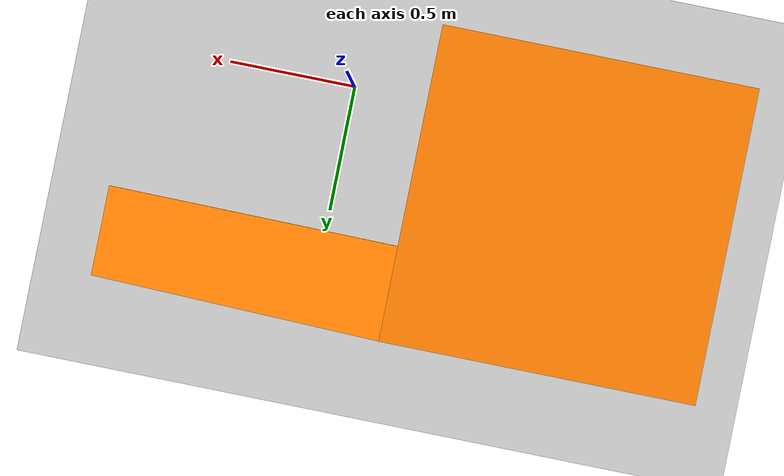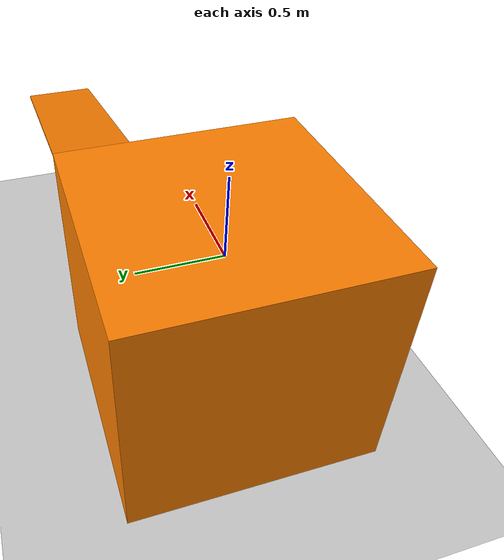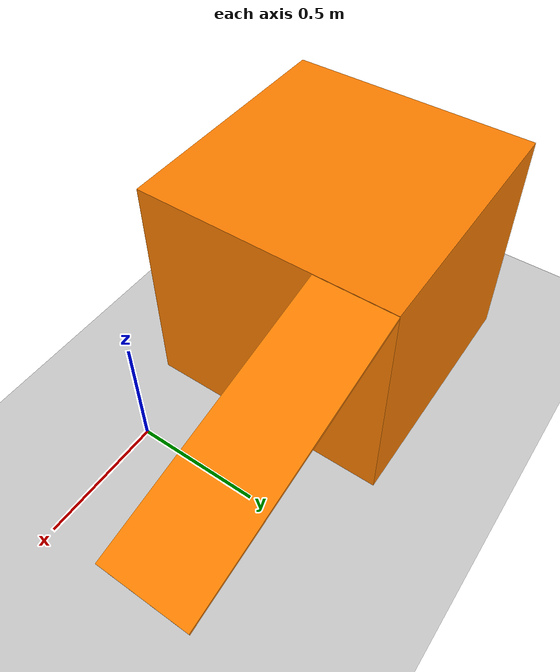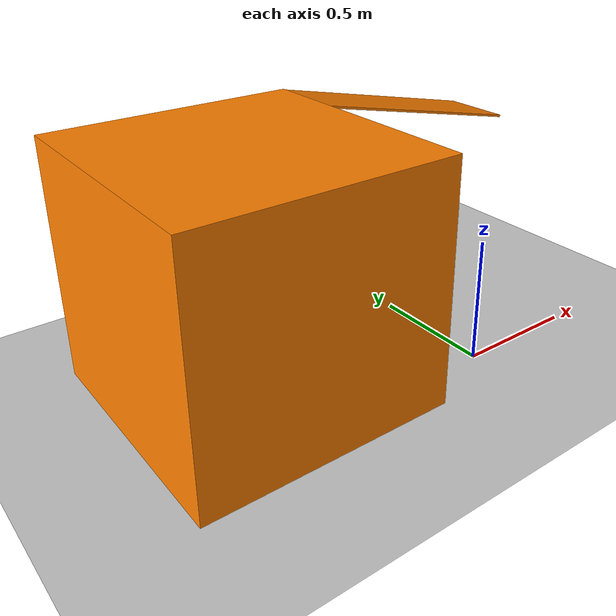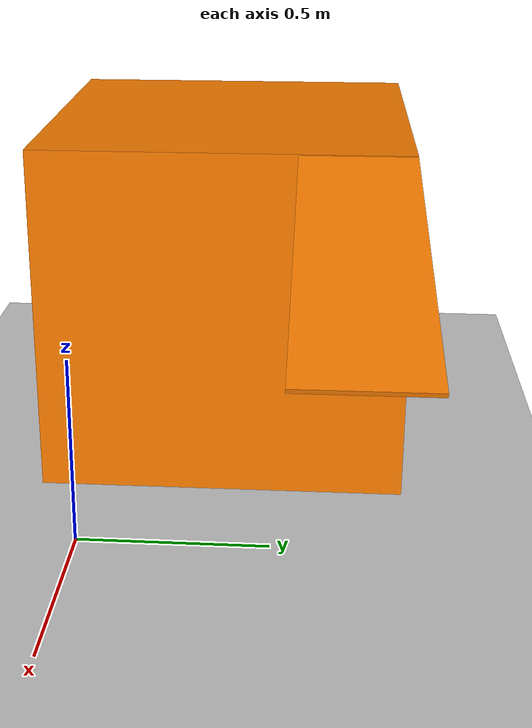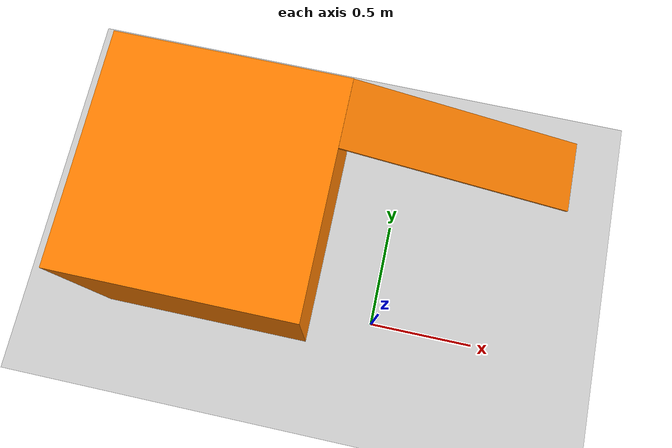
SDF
<?xml version="1.0" ?>
<sdf version="1.6">
  <world name="empty">
    <physics name="1ms" type="ignored">
      <max_step_size>0.001</max_step_size>
      <real_time_factor>1.0</real_time_factor>
    </physics>
    <plugin
      filename="ignition-gazebo-physics-system"
      name="gz::sim::systems::Physics">
    </plugin>
    <plugin
      filename="ignition-gazebo-user-commands-system"
      name="gz::sim::systems::UserCommands">
    </plugin>
    <plugin
      filename="ignition-gazebo-scene-broadcaster-system"
      name="gz::sim::systems::SceneBroadcaster">
    </plugin>
    <plugin
      filename="ignition-gazebo-contact-system"
      name="gz::sim::systems::Contact">
    </plugin>
    <plugin
      filename="ignition-gazebo-forcetorque-system"
      name="ignition::gazebo::systems::ForceTorque">
    </plugin>

    <light type="directional" name="sun">
      <cast_shadows>true</cast_shadows>
      <pose>0 0 10 0 0 0</pose>
      <diffuse>0.8 0.8 0.8 1</diffuse>
      <specular>0.2 0.2 0.2 1</specular>
      <attenuation>
        <range>1000</range>
        <constant>0.9</constant>
        <linear>0.01</linear>
        <quadratic>0.001</quadratic>
      </attenuation>
      <direction>-0.5 0.1 -0.9</direction>
    </light>

    <model name="ground_plane">
      <static>true</static>
      <link name="link">
        <collision name="collision">
          <geometry>
            <plane>
              <normal>0 0 1</normal>
              <size>100 100</size>
            </plane>
          </geometry>
        </collision>
        <visual name="visual">
          <geometry>
            <plane>
              <normal>0 0 1</normal>
              <size>100 100</size>
            </plane>
          </geometry>
          <material>
            <ambient>0.8 0.8 0.8 1</ambient>
            <diffuse>0.8 0.8 0.8 1</diffuse>
            <specular>0.8 0.8 0.8 1</specular>
          </material>
        </visual>
      </link>
    </model>

    <model name="ramp">
      <static>true</static>
      <pose>0.18 0.70 0.84 0 0.21 0</pose>
      <link name="link">
        <collision name="collision">
          <geometry>
            <box>
              <size>1.0 0.3 0.01</size>
            </box>
          </geometry>
        </collision>
        <visual name="visual">
          <geometry>
            <box>
              <size>1.0 0.3 0.01</size>
            </box>
          </geometry>
          <material>
            <ambient>1.0 0.5 0.0 1</ambient>  <!-- RGB for orange -->
            <diffuse>1.0 0.5 0.0 1</diffuse>  <!-- RGB for orange -->
          </material>
        </visual>
      </link>
    </model>

    <model name="box">
      <static>true</static>
      <pose>-0.8 0.35 0.45 0 0 0</pose>
      <link name="link">
        <collision name="collision">
          <geometry>
            <box>
              <size>1.0 1.0 1.0</size>
            </box>
          </geometry>
        </collision>
        <visual name="visual">
          <geometry>
            <box>
              <size>1.0 1.0 1.0</size>
            </box>
          </geometry>
          <material>
            <ambient>1.0 0.5 0.0 1</ambient>  <!-- RGB for orange -->
            <diffuse>1.0 0.5 0.0 1</diffuse>  <!-- RGB for orange -->
          </material>
        </visual>
      </link>
    </model>

  </world>
</sdf>
